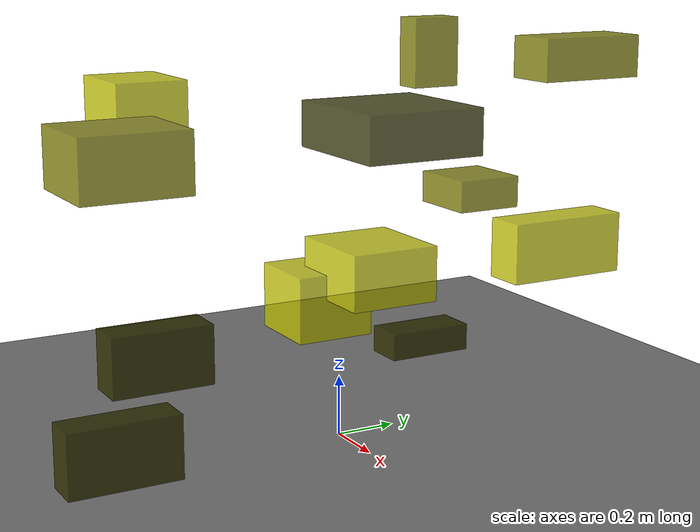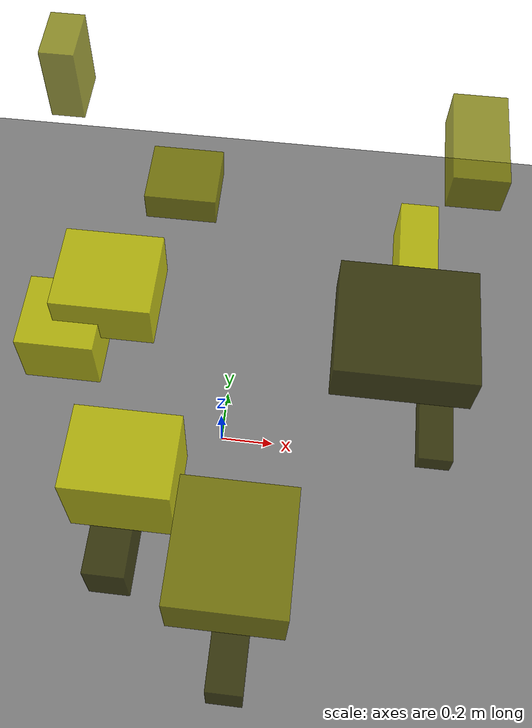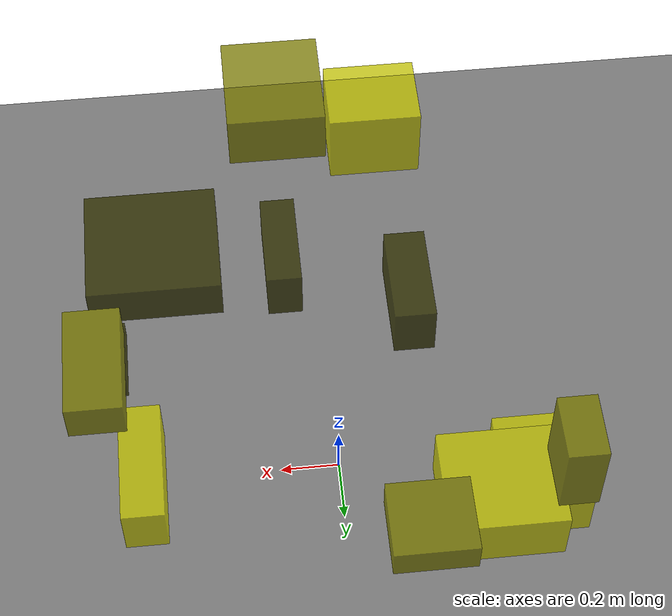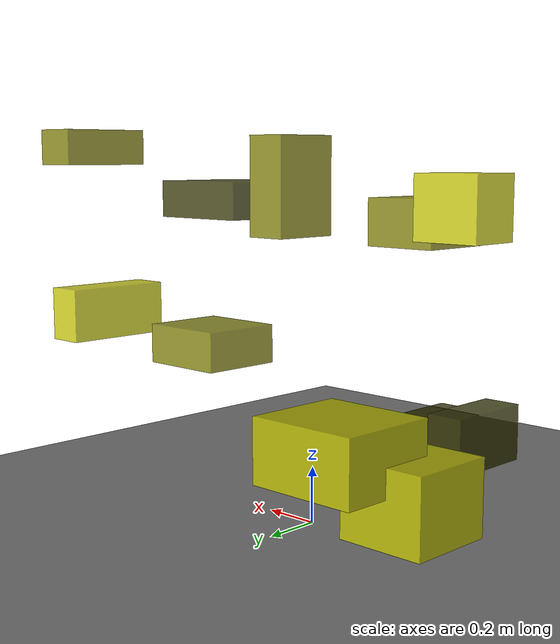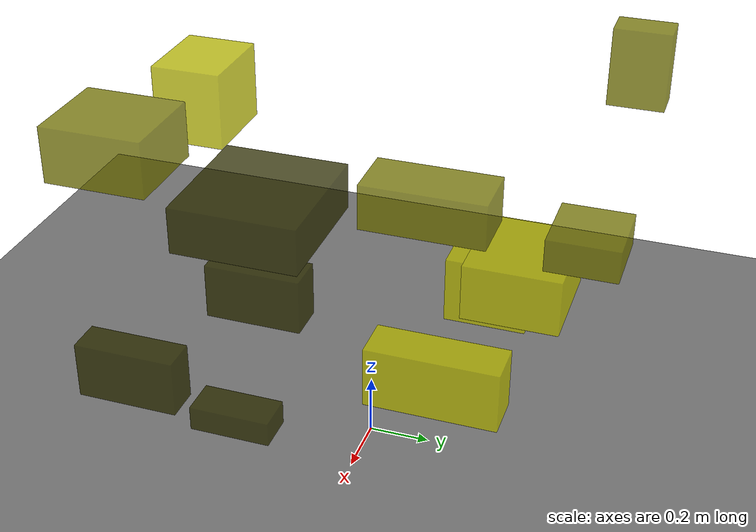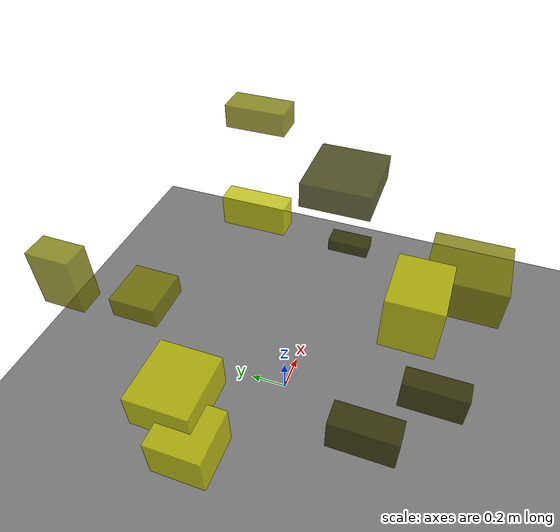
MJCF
<?xml version="1.0"?>
<mujoco model="obstacle_scene">
  <compiler angle="radian" coordinate="local"/>
  <option timestep="0.001" gravity="0 0 -9.81"/>

  <asset>
    <material name="obstacle_mat" rgba="0.8 0.8 0.0 0.8"/>
    <material name="ground_mat" rgba="0.5 0.5 0.5 1"/>
  </asset>

  <worldbody>
    <!-- Ground plane -->
    <geom name="ground" type="plane" size="3 3 0.1" material="ground_mat"/>

    <!-- Obstacles -->
    <body name="obstacle_0" pos="0.130313 -0.816850 0.136611">
      <geom name="obs_0" type="box" size="0.062152 0.180656 0.102567" rgba="0.2 0.2 0.0 0.8"/>
    </body>
    <body name="obstacle_1" pos="0.134175 -0.792589 1.008697">
      <geom name="obs_1" type="box" size="0.154799 0.169995 0.094700" rgba="0.5 0.5 0.0 0.8"/>
    </body>
    <body name="obstacle_2" pos="-0.164806 -0.620286 1.078741">
      <geom name="obs_2" type="box" size="0.139898 0.113847 0.124774" rgba="0.8 0.8 0.0 0.8"/>
    </body>
    <body name="obstacle_3" pos="-0.300205 -0.524091 0.265178">
      <geom name="obs_3" type="box" size="0.071108 0.178064 0.103354" rgba="0.2 0.2 0.0 0.8"/>
    </body>
    <body name="obstacle_4" pos="-0.206665 0.642641 0.735910">
      <geom name="obs_4" type="box" size="0.125342 0.117405 0.054736" rgba="0.5 0.5 0.0 0.8"/>
    </body>
    <body name="obstacle_5" pos="-0.634232 0.255955 0.284123">
      <geom name="obs_5" type="box" size="0.146644 0.148053 0.122527" rgba="0.8 0.8 0.0 0.8"/>
    </body>
    <body name="obstacle_6" pos="0.537190 -0.133004 1.105745">
      <geom name="obs_6" type="box" size="0.193685 0.179355 0.066994" rgba="0.2 0.2 0.0 0.8"/>
    </body>
    <body name="obstacle_7" pos="-0.573626 0.697184 1.189950">
      <geom name="obs_7" type="box" size="0.054853 0.091592 0.127918" rgba="0.5 0.5 0.0 0.8"/>
    </body>
    <body name="obstacle_8" pos="-0.470950 0.388099 0.417433">
      <geom name="obs_8" type="box" size="0.186835 0.170648 0.102840" rgba="0.8 0.8 0.0 0.8"/>
    </body>
    <body name="obstacle_9" pos="0.727124 -0.147313 0.546739">
      <geom name="obs_9" type="box" size="0.055090 0.115879 0.035724" rgba="0.2 0.2 0.0 0.8"/>
    </body>
    <body name="obstacle_10" pos="0.697442 0.383746 1.294279">
      <geom name="obs_10" type="box" size="0.077649 0.159534 0.059735" rgba="0.5 0.5 0.0 0.8"/>
    </body>
    <body name="obstacle_11" pos="0.619614 0.391675 0.728512">
      <geom name="obs_11" type="box" size="0.063216 0.185522 0.088522" rgba="0.8 0.8 0.0 0.8"/>
    </body>
  </worldbody>
</mujoco>
